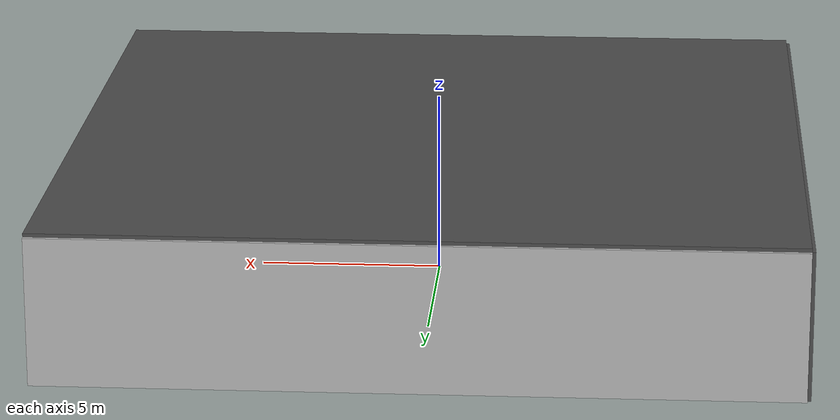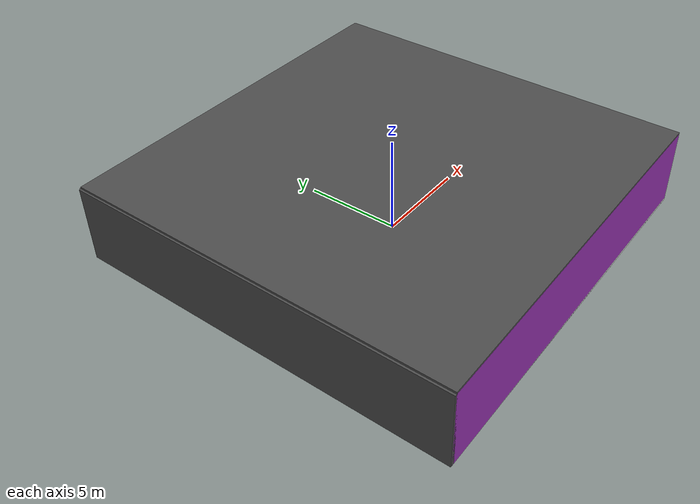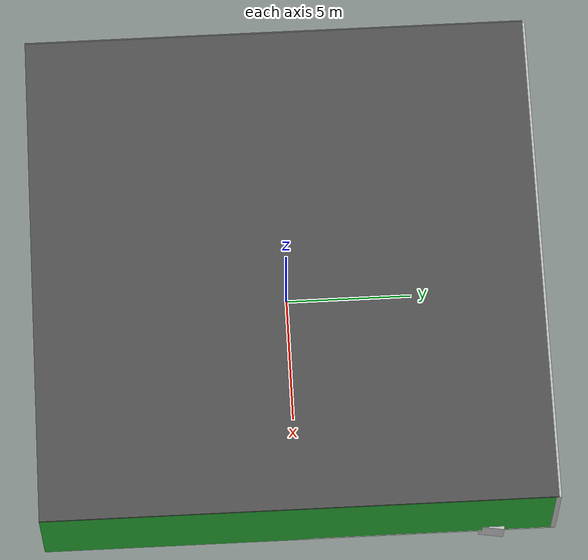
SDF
<sdf version="1.4">
 <world name="default">
  <physics type="ode">
   <max_step_size>0.001</max_step_size>
   <real_time_factor>1</real_time_factor>
   <real_time_update_rate>1000</real_time_update_rate>
   <gravity>0 0 -9.8</gravity>
  </physics>
  <scene><ambient>0.4 0.4 0.4 1</ambient><background>0.7 0.7 0.7 1</background><shadows>1</shadows></scene>
  <model name="Surrounding">
   <static>1</static>
   <link name="Ceiling">
    <collision name="Ceiling_Collision"><geometry><box><size>20 20 0.1</size></box></geometry></collision>
    <visual name="Ceiling_Visual">
     <geometry><box><size>20 20 0.1</size></box></geometry>
     <material>
      <script><uri>file://media/materials/scripts/gazebo.material</uri><name>Gazebo/DarkGrey</name></script>
     </material>
    </visual>
    <pose>0 0 4.05 0 0 0</pose>
   </link>
   <link name="Wall_South">
    <collision name="Wall_South_Collision">
     <geometry><box><size>20 0 4</size></box></geometry>
     <pose>0 0 2 0 -0 0</pose>
    </collision>
    <visual name="Wall_South_Visual">
     <pose>0 0 2 0 -0 0</pose>
     <geometry><box><size>20 0 4</size></box></geometry>
     <material>
      <script><uri>file://media/materials/scripts/gazebo.material</uri><name>Gazebo/PurpleGlow</name></script>
     </material>
    </visual>
    <velocity_decay><linear>0</linear><angular>0</angular></velocity_decay>
    <pose>0 -10 0 0 -0 0</pose>
   </link>
   <link name="Wall_East">
    <collision name="Wall_21_Collision">
     <geometry><box><size>20 0 4</size></box></geometry>
     <pose>0 0 2 0 -0 0</pose>
    </collision>
    <visual name="Wall_21_Visual">
     <pose>0 0 2 0 -0 0</pose>
     <geometry><box><size>20 0 4</size></box></geometry>
     <material>
      <script><uri>file://media/materials/scripts/gazebo.material</uri><name>Gazebo/GreenGlow</name></script>
     </material>
    </visual>
    <velocity_decay><linear>0</linear><angular>0</angular></velocity_decay>
    <pose>10 0 0 0 -0 1.5708</pose>
   </link>
   <link name="Wall_North">
    <collision name="Wall_22_Collision">
     <geometry><box><size>20 0.2 4</size></box></geometry>
     <pose>0 0 2 0 -0 0</pose>
    </collision>
    <visual name="Wall_22_Visual">
     <pose>0 0 2 0 -0 0</pose>
     <geometry><box><size>20 0.2 4</size></box></geometry>
     <material>
      <script><uri>file://media/materials/scripts/gazebo.material</uri><name>Gazebo/Pioneer2Body</name></script>
     </material>
    </visual>
    <velocity_decay><linear>0</linear><angular>0</angular></velocity_decay>
    <pose>0 10 0 0 -0 0</pose>
   </link>
   <link name="Wall_West">
    <collision name="Wall_23_Collision">
     <geometry><box><size>20 0.2 4</size></box></geometry>
     <pose>0 0 2 0 -0 0</pose>
    </collision>
    <visual name="Wall_23_Visual">
     <pose>0 0 2 0 -0 0</pose>
     <geometry><box><size>20 0.2 4</size></box></geometry>
     <material>
      <script><uri>file://media/materials/scripts/gazebo.material</uri><name>Gazebo/DarkGrey</name></script>
     </material>
    </visual>
    <velocity_decay><linear>0</linear><angular>0</angular></velocity_decay>
    <pose>-10 0 0 0 0 -1.5708</pose>
   </link>
   <link name="Ground_link">
    <collision name="collision">
     <pose>0 0 .05 0 -0 0</pose>
     <geometry><box><size>20 20 0.1</size></box></geometry>
    </collision>
    <visual name="visual">
     <pose>0 0 .05 0 -0 0</pose>
     <geometry><box><size>20 20 0.1</size></box></geometry>
     <material>
      <script><uri>file://media/materials/scripts/gazebo.material</uri><name>Gazebo/WhiteGlow</name></script>
     </material>
    </visual>
   </link>
   <static>1</static>
  </model>
  <spherical_coordinates>
   <surface_model>EARTH_WGS84</surface_model>
   <latitude_deg>0</latitude_deg>
   <longitude_deg>0</longitude_deg>
   <elevation>0</elevation>
   <heading_deg>0</heading_deg>
  </spherical_coordinates>
  <light name="lightball_0" type="diffuse">
   <diffuse>0.8 0.8 0.8 1</diffuse>
   <specular>0.2 0.2 0.2 1</specular>
   <attenuation>
    <range>100</range>
    <constant>0.7</constant>
    <linear>0.01</linear>
    <quadratic>0.001</quadratic>
   </attenuation>
   <direction>-0.5 0.1 -0.9</direction>
   <pose>8.0903349689 5.06699619413 2.92444106253 0 0 0</pose>
  </light>
  <light name="lightball_1" type="diffuse">
   <diffuse>0.8 0.8 0.8 1</diffuse>
   <specular>0.2 0.2 0.2 1</specular>
   <attenuation>
    <range>100</range>
    <constant>0.7</constant>
    <linear>0.01</linear>
    <quadratic>0.001</quadratic>
   </attenuation>
   <direction>-0.5 0.1 -0.9</direction>
   <pose>6.33504892586 -2.95008890437 0.624326441484 0 0 0</pose>
  </light>
  <light name="lightball_2" type="diffuse">
   <diffuse>0.8 0.8 0.8 1</diffuse>
   <specular>0.2 0.2 0.2 1</specular>
   <attenuation>
    <range>100</range>
    <constant>0.7</constant>
    <linear>0.01</linear>
    <quadratic>0.001</quadratic>
   </attenuation>
   <direction>-0.5 0.1 -0.9</direction>
   <pose>1.75944599856 6.4236574582 2.18093691278 0 0 0</pose>
  </light>
  <light name="lightball_3" type="diffuse">
   <diffuse>0.8 0.8 0.8 1</diffuse>
   <specular>0.2 0.2 0.2 1</specular>
   <attenuation>
    <range>100</range>
    <constant>0.7</constant>
    <linear>0.01</linear>
    <quadratic>0.001</quadratic>
   </attenuation>
   <direction>-0.5 0.1 -0.9</direction>
   <pose>8.43955194997 3.88414958608 2.45561004206 0 0 0</pose>
  </light>
  <light name="lightball_4" type="diffuse">
   <diffuse>0.8 0.8 0.8 1</diffuse>
   <specular>0.2 0.2 0.2 1</specular>
   <attenuation>
    <range>100</range>
    <constant>0.7</constant>
    <linear>0.01</linear>
    <quadratic>0.001</quadratic>
   </attenuation>
   <direction>-0.5 0.1 -0.9</direction>
   <pose>-7.31704538356 7.82839735659 1.48902301543 0 0 0</pose>
  </light>
  <light name="lightball_5" type="diffuse">
   <diffuse>0.8 0.8 0.8 1</diffuse>
   <specular>0.2 0.2 0.2 1</specular>
   <attenuation>
    <range>100</range>
    <constant>0.7</constant>
    <linear>0.01</linear>
    <quadratic>0.001</quadratic>
   </attenuation>
   <direction>-0.5 0.1 -0.9</direction>
   <pose>-6.44934075447 -3.01715710028 3.75783754576 0 0 0</pose>
  </light>
  <light name="lightball_6" type="diffuse">
   <diffuse>0.8 0.8 0.8 1</diffuse>
   <specular>0.2 0.2 0.2 1</specular>
   <attenuation>
    <range>100</range>
    <constant>0.7</constant>
    <linear>0.01</linear>
    <quadratic>0.001</quadratic>
   </attenuation>
   <direction>-0.5 0.1 -0.9</direction>
   <pose>-2.05145173425 -0.768397164161 0.721580652876 0 0 0</pose>
  </light>
  <include><uri>model://cabinet</uri><pose>-6.95771607175 -4.42377982106 0 0 0 2.59860149946</pose></include>
  <include><uri>model://cabinet</uri><pose>-4.05342706931 -7.63401142721 0 0 0 1.66163615138</pose></include>
  <include><uri>model://cabinet</uri><pose>-4.77655952664 -1.81314161004 0 0 0 1.8274197629</pose></include>
  <include><uri>model://table</uri><pose>-4.92392734251 7.00744725322 0 0 0 2.55860108903</pose></include>
  <include><uri>model://cabinet</uri><pose>0.825464303699 1.34154412724 0 0 0 0.039052475901</pose></include>
  <include>
   <uri>model://construction_cone</uri>
   <pose>0.826780582308 7.4880580464 0 0 0 3.13993212237</pose>
  </include>
  <include>
   <uri>model://textured_shapes</uri>
   <pose>8.07705081333 7.86514337664 0 0 0 1.42138442653</pose>
  </include>
 </world>
</sdf>

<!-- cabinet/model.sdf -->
<sdf version="1.5">
  <model name="cabinet">
    <static>true</static>
    <link name="cabinet_bottom_plate">
      <inertial>
        <pose>0 0 -1 0 0 0</pose>
        <inertia>
          <ixx>2.050000</ixx>
          <ixy>0</ixy>
          <ixz>0</ixz>
          <iyy>2.050000</iyy>
          <iyz>0</iyz>
          <izz>2.050000</izz>
        </inertia>
        <mass>25.000000</mass>
      </inertial>
      <collision name="cabinet_bottom_plate_geom">
        <pose>0 0 0.010000 0 0 0</pose>
        <geometry>
          <box>
            <size>0.450000 0.450000 0.020000</size>
          </box>
        </geometry>
      </collision>
      <visual name="cabinet_bottom_plate_geom_visual">
        <pose>0 0 0.010000 0 0 0</pose>
        <geometry>
          <box>
            <size>0.450000 0.450000 0.020000</size>
          </box>
        </geometry>
        <material>
          <script>
            <uri>model://media/materials/scripts/gazebo.material</uri>
            <name>Gazebo/Wood</name>
          </script>
        </material>
      </visual>
      <collision name="cabinet_bottom_plate_geom_cabinet_back_plate">
        <pose>0.235000 0 0.510000 0 0 0</pose>
        <geometry>
          <box>
            <size>0.020000 0.450000 1.020000</size>
          </box>
        </geometry>
      </collision>
      <visual name="cabinet_bottom_plate_geom_cabinet_back_plate_visual">
        <pose>0.235000 0 0.510000 0 0 0</pose>
        <geometry>
          <box>
            <size>0.020000 0.450000 1.020000</size>
          </box>
        </geometry>
        <material>
          <script>
            <uri>model://media/materials/scripts/gazebo.material</uri>
            <name>Gazebo/Wood</name>
          </script>
        </material>
      </visual>
      <collision name="cabinet_bottom_plate_geom_cabinet_left_plate">
        <pose>0 0.235000 0.510000 0 0 0</pose>
        <geometry>
          <box>
            <size>0.450000 0.020000 1.020000</size>
          </box>
        </geometry>
      </collision>
      <visual name="cabinet_bottom_plate_geom_cabinet_left_plate_visual">
        <pose>0 0.235000 0.510000 0 0 0</pose>
        <geometry>
          <box>
            <size>0.450000 0.020000 1.020000</size>
          </box>
        </geometry>
        <material>
          <script>
            <uri>model://media/materials/scripts/gazebo.material</uri>
            <name>Gazebo/Wood</name>
          </script>
        </material>
      </visual>
      <collision name="cabinet_bottom_plate_geom_cabinet_middle_plate">
        <pose>0 0 0.510000 0 0 0</pose>
        <geometry>
          <box>
            <size>0.450000 0.450000 0.020000</size>
          </box>
        </geometry>
      </collision>
      <visual name="cabinet_bottom_plate_geom_cabinet_middle_plate_visual">
        <pose>0 0 0.510000 0 0 0</pose>
        <geometry>
          <box>
            <size>0.450000 0.450000 0.020000</size>
          </box>
        </geometry>
        <material>
          <script>
            <uri>model://media/materials/scripts/gazebo.material</uri>
            <name>Gazebo/Wood</name>
          </script>
        </material>
      </visual>
      <collision name="cabinet_bottom_plate_geom_cabinet_right_plate">
        <pose>0 -0.235000 0.510000 0 0 0</pose>
        <geometry>
          <box>
            <size>0.450000 0.020000 1.020000</size>
          </box>
        </geometry>
      </collision>
      <visual name="cabinet_bottom_plate_geom_cabinet_right_plate_visual">
        <pose>0 -0.235000 0.510000 0 0 0</pose>
        <geometry>
          <box>
            <size>0.450000 0.020000 1.020000</size>
          </box>
        </geometry>
        <material>
          <script>
            <uri>model://media/materials/scripts/gazebo.material</uri>
            <name>Gazebo/Wood</name>
          </script>
        </material>
      </visual>
      <collision name="cabinet_bottom_plate_geom_cabinet_top_plate">
        <pose>0 0 1.010000 0 0 0</pose>
        <geometry>
          <box>
            <size>0.450000 0.450000 0.020000</size>
          </box>
        </geometry>
      </collision>
      <visual name="cabinet_bottom_plate_geom_cabinet_top_plate_visual">
        <pose>0 0 1.010000 0 0 0</pose>
        <geometry>
          <box>
            <size>0.450000 0.450000 0.020000</size>
          </box>
        </geometry>
        <material>
          <script>
            <uri>model://media/materials/scripts/gazebo.material</uri>
            <name>Gazebo/Wood</name>
          </script>
        </material>
      </visual>
    </link>
  </model>
</sdf>

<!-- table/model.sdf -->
<sdf version="1.5">
  <model name="table">
    <static>true</static>
    <link name="link">
      <collision name="surface">
        <pose>0 0 1.0 0 0 0</pose>
        <geometry>
          <box>
            <size>1.5 0.8 0.03</size>
          </box>
        </geometry>
        <surface>
          <friction>
            <ode>
              <mu>0.6</mu>
              <mu2>0.6</mu2>
            </ode>
          </friction>
        </surface>
      </collision>
      <visual name="visual1">
        <pose>0 0 1.0 0 0 0</pose>
        <geometry>
          <box>
            <size>1.5 0.8 0.03</size>
          </box>
        </geometry>
        <material>
          <script>
            <uri>model://media/materials/scripts/gazebo.material</uri>
            <name>Gazebo/Wood</name>
          </script>
        </material>
      </visual>
      <collision name="front_left_leg">
        <pose>0.68 0.38 0.5 0 0 0</pose>
        <geometry>
          <cylinder>
            <radius>0.02</radius>
            <length>1.0</length>
          </cylinder>
        </geometry>
      </collision>
      <visual name="front_left_leg">
        <pose>0.68 0.38 0.5 0 0 0</pose>
        <geometry>
          <cylinder>
            <radius>0.02</radius>
            <length>1.0</length>
          </cylinder>
        </geometry>
        <material>
          <script>
            <uri>model://media/materials/scripts/gazebo.material</uri>
            <name>Gazebo/Grey</name>
          </script>
        </material>
      </visual>
      <collision name="front_right_leg">
        <pose>0.68 -0.38 0.5 0 0 0</pose>
        <geometry>
          <cylinder>
            <radius>0.02</radius>
            <length>1.0</length>
          </cylinder>
        </geometry>
      </collision>
      <visual name="front_right_leg">
        <pose>0.68 -0.38 0.5 0 0 0</pose>
        <geometry>
          <cylinder>
            <radius>0.02</radius>
            <length>1.0</length>
          </cylinder>
        </geometry>
        <material>
          <script>
            <uri>model://media/materials/scripts/gazebo.material</uri>
            <name>Gazebo/Grey</name>
          </script>
        </material>
      </visual>
      <collision name="back_right_leg">
        <pose>-0.68 -0.38 0.5 0 0 0</pose>
        <geometry>
          <cylinder>
            <radius>0.02</radius>
            <length>1.0</length>
          </cylinder>
        </geometry>
      </collision>
      <visual name="back_right_leg">
        <pose>-0.68 -0.38 0.5 0 0 0</pose>
        <geometry>
          <cylinder>
            <radius>0.02</radius>
            <length>1.0</length>
          </cylinder>
        </geometry>
        <material>
          <script>
            <uri>model://media/materials/scripts/gazebo.material</uri>
            <name>Gazebo/Grey</name>
          </script>
        </material>
      </visual>
      <collision name="back_left_leg">
        <pose>-0.68 0.38 0.5 0 0 0</pose>
        <geometry>
          <cylinder>
            <radius>0.02</radius>
            <length>1.0</length>
          </cylinder>
        </geometry>
      </collision>
      <visual name="back_left_leg">
        <pose>-0.68 0.38 0.5 0 0 0</pose>
        <geometry>
          <cylinder>
            <radius>0.02</radius>
            <length>1.0</length>
          </cylinder>
        </geometry>
        <material>
          <script>
            <uri>model://media/materials/scripts/gazebo.material</uri>
            <name>Gazebo/Grey</name>
          </script>
        </material>
      </visual>
    </link>
  </model>
</sdf>

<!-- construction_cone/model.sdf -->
<sdf version="1.5">
  <model name="Construction Cone">
    <link name="link">
      <collision name="collision">
        <geometry>
          <mesh>
            <scale>10 10 10</scale>
            <uri>file://isr-testbed/construction_cone/meshes/construction_cone.dae</uri>
          </mesh>
        </geometry>
      </collision>
      <visual name="visual">
        <geometry>
          <mesh>
            <scale>10 10 10</scale>
            <uri>file://isr-testbed/construction_cone/meshes/construction_cone.dae</uri>
          </mesh>
        </geometry>
      </visual>
    </link>
  </model>
</sdf>

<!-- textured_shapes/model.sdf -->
<sdf version="1.6">
  <model name="textured_shapes">
    <pose>0 0 0.5 0 0 0</pose>
    <link name="box">
      <pose>0 -1.5 0 0 0 0</pose>
      <collision name="collision">
        <geometry>
          <box>
            <size>1 1 1</size>
          </box>
        </geometry>
      </collision>
      <visual name="visual">
        <geometry>
          <box>
            <size>1 1 1</size>
          </box>
        </geometry>
        <material>
          <script>
            <uri>model://../model_source/models/textured_shapes/materials/scripts</uri>
            <uri>model://../model_source/models/textured_shapes/materials/textures</uri>
            <name>TexturedShape/Squares</name>
          </script>
        </material>
      </visual>
    </link>
    <link name="sphere">
      <collision name="collision">
        <geometry>
          <sphere>
            <radius>0.5</radius>
          </sphere>
        </geometry>
      </collision>
      <visual name="visual">
        <geometry>
          <sphere>
            <radius>0.5</radius>
          </sphere>
        </geometry>
        <material>
          <script>
            <uri>model://../model_source/models/textured_shapes/materials/scripts</uri>
            <uri>model://../model_source/models/textured_shapes/materials/textures</uri>
            <name>TexturedShape/Squares</name>
          </script>
        </material>
      </visual>
    </link>
    <link name="cylinder">
      <pose>0 1.5 0 0 0 0</pose>
      <collision name="collision">
        <geometry>
          <cylinder>
            <radius>0.5</radius>
            <length>1</length>
          </cylinder>
        </geometry>
      </collision>
      <visual name="visual">
        <geometry>
          <cylinder>
            <radius>0.5</radius>
            <length>1</length>
          </cylinder>
        </geometry>
        <material>
          <script>
            <uri>model://../model_source/models/textured_shapes/materials/scripts</uri>
            <uri>model://../model_source/models/textured_shapes/materials/textures</uri>
            <name>TexturedShape/Squares</name>
          </script>
        </material>
      </visual>
    </link>
  </model>
</sdf>
